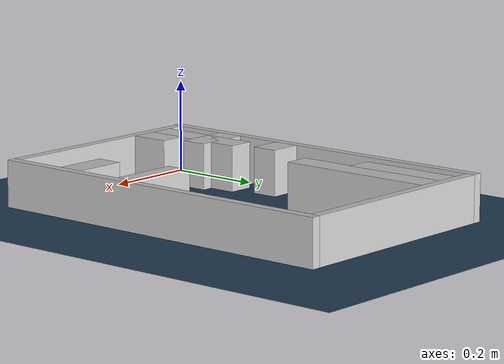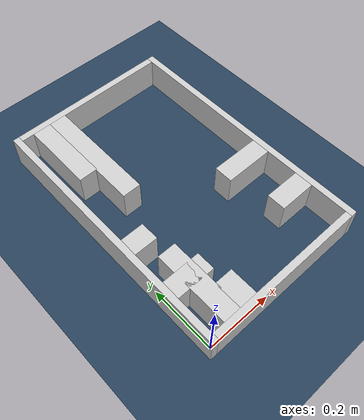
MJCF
<?xml version="1.0" ?>
<mujoco model="generated_real_template">
  <compiler angle="degree"/>
  <option timestep="0.002" integrator="implicitfast" iterations="100" cone="elliptic"/>
  <default>
    <geom density="1"/>
  </default>
  <asset>
    <texture builtin="gradient" height="3072" rgb1="0.3 0.5 0.7" rgb2="0 0 0" type="skybox" width="512"/>
    <texture builtin="checker" height="300" mark="edge" markrgb="0.8 0.8 0.8" name="groundplane" rgb1="0.2 0.3 0.4" rgb2="0.1 0.2 0.3" type="2d" width="300"/>
    <material name="groundplane" reflectance="0.2" texrepeat="5 5" texture="groundplane" texuniform="true"/>
  </asset>
  <worldbody>
    <light dir="0 0 -1" directional="true" pos="0 0 1.5"/>
    <geom name="floor" type="plane" condim="4" friction="0.5 0.005 0.001" material="groundplane" size="0 0 0.05"/>
    <body name="walls">
      <geom name="wall_boundary_left" type="box" condim="4" friction="1.0 0.005 0.0001" rgba="0.8 0.8 0.8 1" pos="-0.010000 0.387500 0.050000" euler="0 0 0.000000" size="0.010000 0.407500 0.050000"/>
      <geom name="wall_boundary_right" type="box" condim="4" friction="1.0 0.005 0.0001" rgba="0.8 0.8 0.8 1" pos="0.500000 0.387500 0.050000" euler="0 0 0.000000" size="0.010000 0.407500 0.050000"/>
      <geom name="wall_boundary_bottom" type="box" condim="4" friction="1.0 0.005 0.0001" rgba="0.8 0.8 0.8 1" pos="0.245000 -0.010000 0.050000" euler="0 0 0.000000" size="0.245000 0.010000 0.050000"/>
      <geom name="wall_boundary_top" type="box" condim="4" friction="1.0 0.005 0.0001" rgba="0.8 0.8 0.8 1" pos="0.245000 0.785000 0.050000" euler="0 0 0.000000" size="0.245000 0.010000 0.050000"/>
      <geom name="wall_inner_1_1" type="box" condim="4" friction="1.0 0.005 0.0001" rgba="0.8 0.8 0.8 1" pos="0.119913 0.042407 0.050000" euler="0 0 90.000000" size="0.042407 0.028500 0.050000"/>
      <geom name="wall_inner_1_2" type="box" condim="4" friction="1.0 0.005 0.0001" rgba="0.8 0.8 0.8 1" pos="0.119913 0.602851 0.050000" euler="0 0 90.000000" size="0.172149 0.028500 0.050000"/>
      <geom name="wall_inner_2_1" type="box" condim="4" friction="1.0 0.005 0.0001" rgba="0.8 0.8 0.8 1" pos="0.059268 0.143586 0.050000" euler="0 0 0.000000" size="0.059268 0.028500 0.050000"/>
      <geom name="wall_inner_2_2" type="box" condim="4" friction="1.0 0.005 0.0001" rgba="0.8 0.8 0.8 1" pos="0.433603 0.143586 0.050000" euler="0 0 0.000000" size="0.056397 0.028500 0.050000"/>
      <geom name="wall_inner_3_1" type="box" condim="4" friction="1.0 0.005 0.0001" rgba="0.8 0.8 0.8 1" pos="0.066170 0.116044 0.050000" euler="0 0 90.000000" size="0.116044 0.028500 0.050000"/>
      <geom name="wall_inner_3_2" type="box" condim="4" friction="1.0 0.005 0.0001" rgba="0.8 0.8 0.8 1" pos="0.066170 0.663287 0.050000" euler="0 0 90.000000" size="0.111713 0.028500 0.050000"/>
      <geom name="wall_inner_4_1" type="box" condim="4" friction="1.0 0.005 0.0001" rgba="0.8 0.8 0.8 1" pos="0.036130 0.302469 0.050000" euler="0 0 0.000000" size="0.036130 0.028500 0.050000"/>
      <geom name="wall_inner_4_2" type="box" condim="4" friction="1.0 0.005 0.0001" rgba="0.8 0.8 0.8 1" pos="0.414357 0.302469 0.050000" euler="0 0 0.000000" size="0.075643 0.028500 0.050000"/>
    </body>
  </worldbody>
</mujoco>
